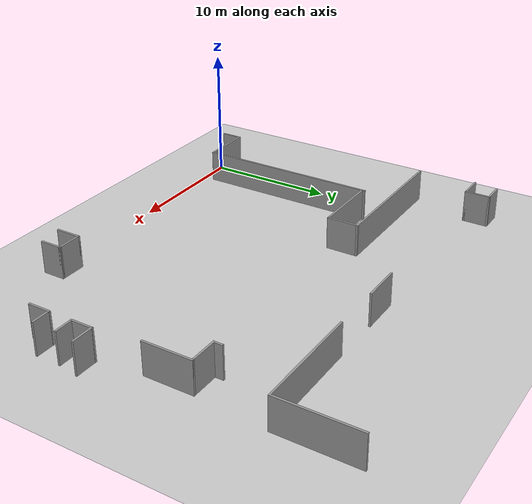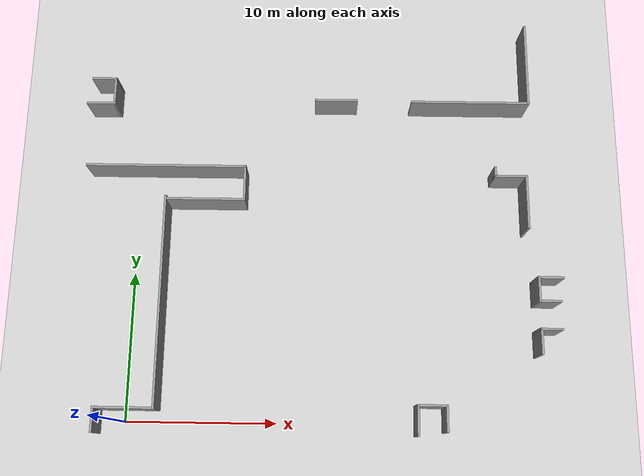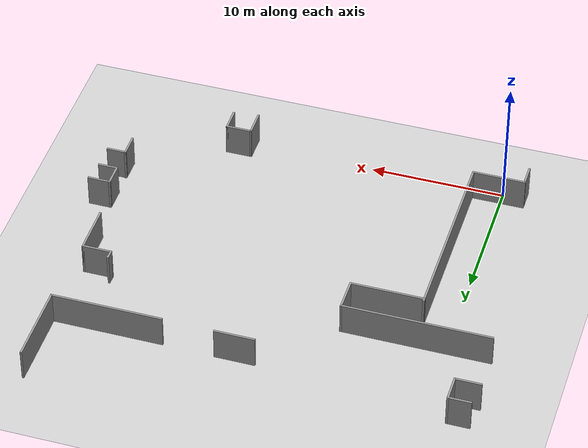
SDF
<sdf version="1.6">
 <world name="default">
  <model name="ground_plane">
   <static>1</static>
   <link name="link">
    <collision name="collision">
     <geometry><plane><normal>0 0 1</normal><size>100 100</size></plane></geometry>
     <surface><friction><ode><mu>100</mu><mu2>50</mu2></ode></friction></surface>
    </collision>
    <visual name="visual">
     <cast_shadows>0</cast_shadows>
     <geometry><plane><normal>0 0 1</normal><size>100 100</size></plane></geometry>
     <material>
      <script><uri>file://media/materials/scripts/gazebo.material</uri><name>Gazebo/Grey</name></script>
     </material>
    </visual>
   </link>
  </model>
  <model name="chengdu_office_0">
   <link name="Wall_10">
    <pose>-23.9919 -17.7709 0 0 -0 1.5708</pose>
    <visual name="Wall_10_Visual">
     <pose>0 0 1.25 0 -0 0</pose>
     <geometry><box><size>2.5 0.15 2.5</size></box></geometry>
     <material>
      <script><uri>file://media/materials/scripts/gazebo.material</uri><name>Gazebo/Grey</name></script>
      <ambient>1 1 1 1</ambient>
      <diffuse>0.7 0.7 0.7 1</diffuse>
      <specular>0.01 0.01 0.01 1</specular>
      <emissive>0 0 0 1</emissive>
     </material>
    </visual>
    <collision name="Wall_10_Collision">
     <pose>0 0 1.25 0 -0 0</pose>
     <geometry><box><size>2.5 0.15 2.5</size></box></geometry>
     <surface>
      <friction>
       <ode><mu>1</mu><mu2>1</mu2><fdir1>0 0 0</fdir1><slip1>0</slip1><slip2>0</slip2></ode>
       <torsional>
        <coefficient>1</coefficient>
        <patch_radius>0</patch_radius>
        <surface_radius>0</surface_radius>
        <use_patch_radius>1</use_patch_radius>
        <ode><slip>0</slip></ode>
       </torsional>
      </friction>
      <bounce><restitution_coefficient>0</restitution_coefficient><threshold>1e+06</threshold></bounce>
      <contact>
       <collide_without_contact>0</collide_without_contact>
       <collide_without_contact_bitmask>1</collide_without_contact_bitmask>
       <collide_bitmask>1</collide_bitmask>
       <ode>
        <soft_cfm>0</soft_cfm>
        <soft_erp>0.2</soft_erp>
        <kp>1e+13</kp>
        <kd>1</kd>
        <max_vel>0.01</max_vel>
        <min_depth>0</min_depth>
       </ode>
       <bullet>
        <split_impulse>1</split_impulse>
        <split_impulse_penetration_threshold>-0.01</split_impulse_penetration_threshold>
        <soft_cfm>0</soft_cfm>
        <soft_erp>0.2</soft_erp>
        <kp>1e+13</kp>
        <kd>1</kd>
       </bullet>
      </contact>
     </surface>
    </collision>
   </link>
   <link name="Wall_11">
    <pose>-29.4169 -16.5959 0 0 -0 3.14159</pose>
    <visual name="Wall_11_Visual">
     <pose>0 0 1.25 0 -0 0</pose>
     <geometry><box><size>11 0.15 2.5</size></box></geometry>
     <material>
      <script><uri>file://media/materials/scripts/gazebo.material</uri><name>Gazebo/Grey</name></script>
      <ambient>1 1 1 1</ambient>
      <diffuse>0.7 0.7 0.7 1</diffuse>
      <specular>0.01 0.01 0.01 1</specular>
      <emissive>0 0 0 1</emissive>
     </material>
    </visual>
    <collision name="Wall_11_Collision">
     <pose>0 0 1.25 0 -0 0</pose>
     <geometry><box><size>11 0.15 2.5</size></box></geometry>
     <surface>
      <friction>
       <ode><mu>1</mu><mu2>1</mu2><fdir1>0 0 0</fdir1><slip1>0</slip1><slip2>0</slip2></ode>
       <torsional>
        <coefficient>1</coefficient>
        <patch_radius>0</patch_radius>
        <surface_radius>0</surface_radius>
        <use_patch_radius>1</use_patch_radius>
        <ode><slip>0</slip></ode>
       </torsional>
      </friction>
      <bounce><restitution_coefficient>0</restitution_coefficient><threshold>1e+06</threshold></bounce>
      <contact>
       <collide_without_contact>0</collide_without_contact>
       <collide_without_contact_bitmask>1</collide_without_contact_bitmask>
       <collide_bitmask>1</collide_bitmask>
       <ode>
        <soft_cfm>0</soft_cfm>
        <soft_erp>0.2</soft_erp>
        <kp>1e+13</kp>
        <kd>1</kd>
        <max_vel>0.01</max_vel>
        <min_depth>0</min_depth>
       </ode>
       <bullet>
        <split_impulse>1</split_impulse>
        <split_impulse_penetration_threshold>-0.01</split_impulse_penetration_threshold>
        <soft_cfm>0</soft_cfm>
        <soft_erp>0.2</soft_erp>
        <kp>1e+13</kp>
        <kd>1</kd>
       </bullet>
      </contact>
     </surface>
    </collision>
   </link>
   <link name="Wall_116">
    <pose>-12.3754 -33.4342 0 0 -0 1.5708</pose>
    <visual name="Wall_116_Visual">
     <pose>0 0 1.25 0 -0 0</pose>
     <geometry><box><size>2 0.15 2.5</size></box></geometry>
     <material>
      <script><uri>file://media/materials/scripts/gazebo.material</uri><name>Gazebo/Grey</name></script>
      <ambient>1 1 1 1</ambient>
      <diffuse>0.7 0.7 0.7 1</diffuse>
      <specular>0.01 0.01 0.01 1</specular>
      <emissive>0 0 0 1</emissive>
     </material>
    </visual>
    <collision name="Wall_116_Collision">
     <pose>0 0 1.25 0 -0 0</pose>
     <geometry><box><size>2 0.15 2.5</size></box></geometry>
     <surface>
      <friction>
       <ode><mu>1</mu><mu2>1</mu2><fdir1>0 0 0</fdir1><slip1>0</slip1><slip2>0</slip2></ode>
       <torsional>
        <coefficient>1</coefficient>
        <patch_radius>0</patch_radius>
        <surface_radius>0</surface_radius>
        <use_patch_radius>1</use_patch_radius>
        <ode><slip>0</slip></ode>
       </torsional>
      </friction>
      <bounce><restitution_coefficient>0</restitution_coefficient><threshold>1e+06</threshold></bounce>
      <contact>
       <collide_without_contact>0</collide_without_contact>
       <collide_without_contact_bitmask>1</collide_without_contact_bitmask>
       <collide_bitmask>1</collide_bitmask>
       <ode>
        <soft_cfm>0</soft_cfm>
        <soft_erp>0.2</soft_erp>
        <kp>1e+13</kp>
        <kd>1</kd>
        <max_vel>0.01</max_vel>
        <min_depth>0</min_depth>
       </ode>
       <bullet>
        <split_impulse>1</split_impulse>
        <split_impulse_penetration_threshold>-0.01</split_impulse_penetration_threshold>
        <soft_cfm>0</soft_cfm>
        <soft_erp>0.2</soft_erp>
        <kp>1e+13</kp>
        <kd>1</kd>
       </bullet>
      </contact>
     </surface>
    </collision>
   </link>
   <link name="Wall_117">
    <pose>-11.4504 -32.5092 0 0 -0 0</pose>
    <visual name="Wall_117_Visual">
     <pose>0 0 1.25 0 -0 0</pose>
     <geometry><box><size>2 0.15 2.5</size></box></geometry>
     <material>
      <script><uri>file://media/materials/scripts/gazebo.material</uri><name>Gazebo/Grey</name></script>
      <ambient>1 1 1 1</ambient>
      <diffuse>0.7 0.7 0.7 1</diffuse>
      <specular>0.01 0.01 0.01 1</specular>
      <emissive>0 0 0 1</emissive>
     </material>
    </visual>
    <collision name="Wall_117_Collision">
     <pose>0 0 1.25 0 -0 0</pose>
     <geometry><box><size>2 0.15 2.5</size></box></geometry>
     <surface>
      <friction>
       <ode><mu>1</mu><mu2>1</mu2><fdir1>0 0 0</fdir1><slip1>0</slip1><slip2>0</slip2></ode>
       <torsional>
        <coefficient>1</coefficient>
        <patch_radius>0</patch_radius>
        <surface_radius>0</surface_radius>
        <use_patch_radius>1</use_patch_radius>
        <ode><slip>0</slip></ode>
       </torsional>
      </friction>
      <bounce><restitution_coefficient>0</restitution_coefficient><threshold>1e+06</threshold></bounce>
      <contact>
       <collide_without_contact>0</collide_without_contact>
       <collide_without_contact_bitmask>1</collide_without_contact_bitmask>
       <collide_bitmask>1</collide_bitmask>
       <ode>
        <soft_cfm>0</soft_cfm>
        <soft_erp>0.2</soft_erp>
        <kp>1e+13</kp>
        <kd>1</kd>
        <max_vel>0.01</max_vel>
        <min_depth>0</min_depth>
       </ode>
       <bullet>
        <split_impulse>1</split_impulse>
        <split_impulse_penetration_threshold>-0.01</split_impulse_penetration_threshold>
        <soft_cfm>0</soft_cfm>
        <soft_erp>0.2</soft_erp>
        <kp>1e+13</kp>
        <kd>1</kd>
       </bullet>
      </contact>
     </surface>
    </collision>
   </link>
   <link name="Wall_118">
    <pose>-10.5254 -33.3092 0 0 0 -1.5708</pose>
    <visual name="Wall_118_Visual">
     <pose>0 0 1.25 0 -0 0</pose>
     <geometry><box><size>1.75 0.15 2.5</size></box></geometry>
     <material>
      <script><uri>file://media/materials/scripts/gazebo.material</uri><name>Gazebo/Grey</name></script>
      <ambient>1 1 1 1</ambient>
      <diffuse>0.7 0.7 0.7 1</diffuse>
      <specular>0.01 0.01 0.01 1</specular>
      <emissive>0 0 0 1</emissive>
     </material>
    </visual>
    <collision name="Wall_118_Collision">
     <pose>0 0 1.25 0 -0 0</pose>
     <geometry><box><size>1.75 0.15 2.5</size></box></geometry>
     <surface>
      <friction>
       <ode><mu>1</mu><mu2>1</mu2><fdir1>0 0 0</fdir1><slip1>0</slip1><slip2>0</slip2></ode>
       <torsional>
        <coefficient>1</coefficient>
        <patch_radius>0</patch_radius>
        <surface_radius>0</surface_radius>
        <use_patch_radius>1</use_patch_radius>
        <ode><slip>0</slip></ode>
       </torsional>
      </friction>
      <bounce><restitution_coefficient>0</restitution_coefficient><threshold>1e+06</threshold></bounce>
      <contact>
       <collide_without_contact>0</collide_without_contact>
       <collide_without_contact_bitmask>1</collide_without_contact_bitmask>
       <collide_bitmask>1</collide_bitmask>
       <ode>
        <soft_cfm>0</soft_cfm>
        <soft_erp>0.2</soft_erp>
        <kp>1e+13</kp>
        <kd>1</kd>
        <max_vel>0.01</max_vel>
        <min_depth>0</min_depth>
       </ode>
       <bullet>
        <split_impulse>1</split_impulse>
        <split_impulse_penetration_threshold>-0.01</split_impulse_penetration_threshold>
        <soft_cfm>0</soft_cfm>
        <soft_erp>0.2</soft_erp>
        <kp>1e+13</kp>
        <kd>1</kd>
       </bullet>
      </contact>
     </surface>
    </collision>
   </link>
   <link name="Wall_13">
    <pose>-34.2261 -12.0538 0 0 -0 0</pose>
    <visual name="Wall_13_Visual">
     <pose>0 0 1.25 0 -0 0</pose>
     <geometry><box><size>2 0.15 2.5</size></box></geometry>
     <material>
      <script><uri>file://media/materials/scripts/gazebo.material</uri><name>Gazebo/Grey</name></script>
      <ambient>1 1 1 1</ambient>
      <diffuse>0.7 0.7 0.7 1</diffuse>
      <specular>0.01 0.01 0.01 1</specular>
      <emissive>0 0 0 1</emissive>
     </material>
    </visual>
    <collision name="Wall_13_Collision">
     <pose>0 0 1.25 0 -0 0</pose>
     <geometry><box><size>2 0.15 2.5</size></box></geometry>
     <surface>
      <friction>
       <ode><mu>1</mu><mu2>1</mu2><fdir1>0 0 0</fdir1><slip1>0</slip1><slip2>0</slip2></ode>
       <torsional>
        <coefficient>1</coefficient>
        <patch_radius>0</patch_radius>
        <surface_radius>0</surface_radius>
        <use_patch_radius>1</use_patch_radius>
        <ode><slip>0</slip></ode>
       </torsional>
      </friction>
      <bounce><restitution_coefficient>0</restitution_coefficient><threshold>1e+06</threshold></bounce>
      <contact>
       <collide_without_contact>0</collide_without_contact>
       <collide_without_contact_bitmask>1</collide_without_contact_bitmask>
       <collide_bitmask>1</collide_bitmask>
       <ode>
        <soft_cfm>0</soft_cfm>
        <soft_erp>0.2</soft_erp>
        <kp>1e+13</kp>
        <kd>1</kd>
        <max_vel>0.01</max_vel>
        <min_depth>0</min_depth>
       </ode>
       <bullet>
        <split_impulse>1</split_impulse>
        <split_impulse_penetration_threshold>-0.01</split_impulse_penetration_threshold>
        <soft_cfm>0</soft_cfm>
        <soft_erp>0.2</soft_erp>
        <kp>1e+13</kp>
        <kd>1</kd>
       </bullet>
      </contact>
     </surface>
    </collision>
   </link>
   <link name="Wall_131">
    <pose>-6.84716 -16.765 0 0 0 -1.5708</pose>
    <visual name="Wall_131_Visual">
     <pose>0 0 1.25 0 -0 0</pose>
     <geometry><box><size>0.75 0.15 2.5</size></box></geometry>
     <material>
      <script><uri>file://media/materials/scripts/gazebo.material</uri><name>Gazebo/Grey</name></script>
      <ambient>1 1 1 1</ambient>
      <diffuse>0.7 0.7 0.7 1</diffuse>
      <specular>0.01 0.01 0.01 1</specular>
      <emissive>0 0 0 1</emissive>
     </material>
    </visual>
    <collision name="Wall_131_Collision">
     <pose>0 0 1.25 0 -0 0</pose>
     <geometry><box><size>0.75 0.15 2.5</size></box></geometry>
     <surface>
      <friction>
       <ode><mu>1</mu><mu2>1</mu2><fdir1>0 0 0</fdir1><slip1>0</slip1><slip2>0</slip2></ode>
       <torsional>
        <coefficient>1</coefficient>
        <patch_radius>0</patch_radius>
        <surface_radius>0</surface_radius>
        <use_patch_radius>1</use_patch_radius>
        <ode><slip>0</slip></ode>
       </torsional>
      </friction>
      <bounce><restitution_coefficient>0</restitution_coefficient><threshold>1e+06</threshold></bounce>
      <contact>
       <collide_without_contact>0</collide_without_contact>
       <collide_without_contact_bitmask>1</collide_without_contact_bitmask>
       <collide_bitmask>1</collide_bitmask>
       <ode>
        <soft_cfm>0</soft_cfm>
        <soft_erp>0.2</soft_erp>
        <kp>1e+13</kp>
        <kd>1</kd>
        <max_vel>0.01</max_vel>
        <min_depth>0</min_depth>
       </ode>
       <bullet>
        <split_impulse>1</split_impulse>
        <split_impulse_penetration_threshold>-0.01</split_impulse_penetration_threshold>
        <soft_cfm>0</soft_cfm>
        <soft_erp>0.2</soft_erp>
        <kp>1e+13</kp>
        <kd>1</kd>
       </bullet>
      </contact>
     </surface>
    </collision>
   </link>
   <link name="Wall_132">
    <pose>-5.79716 -17.065 0 0 -0 0</pose>
    <visual name="Wall_132_Visual">
     <pose>0 0 1.25 0 -0 0</pose>
     <geometry><box><size>2.25 0.15 2.5</size></box></geometry>
     <material>
      <script><uri>file://media/materials/scripts/gazebo.material</uri><name>Gazebo/Grey</name></script>
      <ambient>1 1 1 1</ambient>
      <diffuse>0.7 0.7 0.7 1</diffuse>
      <specular>0.01 0.01 0.01 1</specular>
      <emissive>0 0 0 1</emissive>
     </material>
    </visual>
    <collision name="Wall_132_Collision">
     <pose>0 0 1.25 0 -0 0</pose>
     <geometry><box><size>2.25 0.15 2.5</size></box></geometry>
     <surface>
      <friction>
       <ode><mu>1</mu><mu2>1</mu2><fdir1>0 0 0</fdir1><slip1>0</slip1><slip2>0</slip2></ode>
       <torsional>
        <coefficient>1</coefficient>
        <patch_radius>0</patch_radius>
        <surface_radius>0</surface_radius>
        <use_patch_radius>1</use_patch_radius>
        <ode><slip>0</slip></ode>
       </torsional>
      </friction>
      <bounce><restitution_coefficient>0</restitution_coefficient><threshold>1e+06</threshold></bounce>
      <contact>
       <collide_without_contact>0</collide_without_contact>
       <collide_without_contact_bitmask>1</collide_without_contact_bitmask>
       <collide_bitmask>1</collide_bitmask>
       <ode>
        <soft_cfm>0</soft_cfm>
        <soft_erp>0.2</soft_erp>
        <kp>1e+13</kp>
        <kd>1</kd>
        <max_vel>0.01</max_vel>
        <min_depth>0</min_depth>
       </ode>
       <bullet>
        <split_impulse>1</split_impulse>
        <split_impulse_penetration_threshold>-0.01</split_impulse_penetration_threshold>
        <soft_cfm>0</soft_cfm>
        <soft_erp>0.2</soft_erp>
        <kp>1e+13</kp>
        <kd>1</kd>
       </bullet>
      </contact>
     </surface>
    </collision>
   </link>
   <link name="Wall_133">
    <pose>-4.74716 -18.865 0 0 0 -1.5708</pose>
    <visual name="Wall_133_Visual">
     <pose>0 0 1.25 0 -0 0</pose>
     <geometry><box><size>3.75 0.15 2.5</size></box></geometry>
     <material>
      <script><uri>file://media/materials/scripts/gazebo.material</uri><name>Gazebo/Grey</name></script>
      <ambient>1 1 1 1</ambient>
      <diffuse>0.7 0.7 0.7 1</diffuse>
      <specular>0.01 0.01 0.01 1</specular>
      <emissive>0 0 0 1</emissive>
     </material>
    </visual>
    <collision name="Wall_133_Collision">
     <pose>0 0 1.25 0 -0 0</pose>
     <geometry><box><size>3.75 0.15 2.5</size></box></geometry>
     <surface>
      <friction>
       <ode><mu>1</mu><mu2>1</mu2><fdir1>0 0 0</fdir1><slip1>0</slip1><slip2>0</slip2></ode>
       <torsional>
        <coefficient>1</coefficient>
        <patch_radius>0</patch_radius>
        <surface_radius>0</surface_radius>
        <use_patch_radius>1</use_patch_radius>
        <ode><slip>0</slip></ode>
       </torsional>
      </friction>
      <bounce><restitution_coefficient>0</restitution_coefficient><threshold>1e+06</threshold></bounce>
      <contact>
       <collide_without_contact>0</collide_without_contact>
       <collide_without_contact_bitmask>1</collide_without_contact_bitmask>
       <collide_bitmask>1</collide_bitmask>
       <ode>
        <soft_cfm>0</soft_cfm>
        <soft_erp>0.2</soft_erp>
        <kp>1e+13</kp>
        <kd>1</kd>
        <max_vel>0.01</max_vel>
        <min_depth>0</min_depth>
       </ode>
       <bullet>
        <split_impulse>1</split_impulse>
        <split_impulse_penetration_threshold>-0.01</split_impulse_penetration_threshold>
        <soft_cfm>0</soft_cfm>
        <soft_erp>0.2</soft_erp>
        <kp>1e+13</kp>
        <kd>1</kd>
       </bullet>
      </contact>
     </surface>
    </collision>
   </link>
   <link name="Wall_14">
    <pose>-33.3011 -11.1288 0 0 -0 1.5708</pose>
    <visual name="Wall_14_Visual">
     <pose>0 0 1.25 0 -0 0</pose>
     <geometry><box><size>2 0.15 2.5</size></box></geometry>
     <material>
      <script><uri>file://media/materials/scripts/gazebo.material</uri><name>Gazebo/Grey</name></script>
      <ambient>1 1 1 1</ambient>
      <diffuse>0.7 0.7 0.7 1</diffuse>
      <specular>0.01 0.01 0.01 1</specular>
      <emissive>0 0 0 1</emissive>
     </material>
    </visual>
    <collision name="Wall_14_Collision">
     <pose>0 0 1.25 0 -0 0</pose>
     <geometry><box><size>2 0.15 2.5</size></box></geometry>
     <surface>
      <friction>
       <ode><mu>1</mu><mu2>1</mu2><fdir1>0 0 0</fdir1><slip1>0</slip1><slip2>0</slip2></ode>
       <torsional>
        <coefficient>1</coefficient>
        <patch_radius>0</patch_radius>
        <surface_radius>0</surface_radius>
        <use_patch_radius>1</use_patch_radius>
        <ode><slip>0</slip></ode>
       </torsional>
      </friction>
      <bounce><restitution_coefficient>0</restitution_coefficient><threshold>1e+06</threshold></bounce>
      <contact>
       <collide_without_contact>0</collide_without_contact>
       <collide_without_contact_bitmask>1</collide_without_contact_bitmask>
       <collide_bitmask>1</collide_bitmask>
       <ode>
        <soft_cfm>0</soft_cfm>
        <soft_erp>0.2</soft_erp>
        <kp>1e+13</kp>
        <kd>1</kd>
        <max_vel>0.01</max_vel>
        <min_depth>0</min_depth>
       </ode>
       <bullet>
        <split_impulse>1</split_impulse>
        <split_impulse_penetration_threshold>-0.01</split_impulse_penetration_threshold>
        <soft_cfm>0</soft_cfm>
        <soft_erp>0.2</soft_erp>
        <kp>1e+13</kp>
        <kd>1</kd>
       </bullet>
      </contact>
     </surface>
    </collision>
   </link>
   <link name="Wall_148">
    <pose>-3.43965 -24.0798 0 0 -0 3.14159</pose>
    <visual name="Wall_148_Visual">
     <pose>0 0 1.25 0 -0 0</pose>
     <geometry><box><size>1.75 0.15 2.5</size></box></geometry>
     <material>
      <script><uri>file://media/materials/scripts/gazebo.material</uri><name>Gazebo/Grey</name></script>
      <ambient>1 1 1 1</ambient>
      <diffuse>0.7 0.7 0.7 1</diffuse>
      <specular>0.01 0.01 0.01 1</specular>
      <emissive>0 0 0 1</emissive>
     </material>
    </visual>
    <collision name="Wall_148_Collision">
     <pose>0 0 1.25 0 -0 0</pose>
     <geometry><box><size>1.75 0.15 2.5</size></box></geometry>
     <surface>
      <friction>
       <ode><mu>1</mu><mu2>1</mu2><fdir1>0 0 0</fdir1><slip1>0</slip1><slip2>0</slip2></ode>
       <torsional>
        <coefficient>1</coefficient>
        <patch_radius>0</patch_radius>
        <surface_radius>0</surface_radius>
        <use_patch_radius>1</use_patch_radius>
        <ode><slip>0</slip></ode>
       </torsional>
      </friction>
      <bounce><restitution_coefficient>0</restitution_coefficient><threshold>1e+06</threshold></bounce>
      <contact>
       <collide_without_contact>0</collide_without_contact>
       <collide_without_contact_bitmask>1</collide_without_contact_bitmask>
       <collide_bitmask>1</collide_bitmask>
       <ode>
        <soft_cfm>0</soft_cfm>
        <soft_erp>0.2</soft_erp>
        <kp>1e+13</kp>
        <kd>1</kd>
        <max_vel>0.01</max_vel>
        <min_depth>0</min_depth>
       </ode>
       <bullet>
        <split_impulse>1</split_impulse>
        <split_impulse_penetration_threshold>-0.01</split_impulse_penetration_threshold>
        <soft_cfm>0</soft_cfm>
        <soft_erp>0.2</soft_erp>
        <kp>1e+13</kp>
        <kd>1</kd>
       </bullet>
      </contact>
     </surface>
    </collision>
   </link>
   <link name="Wall_149">
    <pose>-4.23965 -24.8644 0 0 0 -1.5708</pose>
    <visual name="Wall_149_Visual">
     <pose>0 0 1.25 0 -0 0</pose>
     <geometry><box><size>1.75 0.15 2.5</size></box></geometry>
     <material>
      <script><uri>file://media/materials/scripts/gazebo.material</uri><name>Gazebo/Grey</name></script>
      <ambient>1 1 1 1</ambient>
      <diffuse>0.7 0.7 0.7 1</diffuse>
      <specular>0.01 0.01 0.01 1</specular>
      <emissive>0 0 0 1</emissive>
     </material>
    </visual>
    <collision name="Wall_149_Collision">
     <pose>0 0 1.25 0 -0 0</pose>
     <geometry><box><size>1.75 0.15 2.5</size></box></geometry>
     <surface>
      <friction>
       <ode><mu>1</mu><mu2>1</mu2><fdir1>0 0 0</fdir1><slip1>0</slip1><slip2>0</slip2></ode>
       <torsional>
        <coefficient>1</coefficient>
        <patch_radius>0</patch_radius>
        <surface_radius>0</surface_radius>
        <use_patch_radius>1</use_patch_radius>
        <ode><slip>0</slip></ode>
       </torsional>
      </friction>
      <bounce><restitution_coefficient>0</restitution_coefficient><threshold>1e+06</threshold></bounce>
      <contact>
       <collide_without_contact>0</collide_without_contact>
       <collide_without_contact_bitmask>1</collide_without_contact_bitmask>
       <collide_bitmask>1</collide_bitmask>
       <ode>
        <soft_cfm>0</soft_cfm>
        <soft_erp>0.2</soft_erp>
        <kp>1e+13</kp>
        <kd>1</kd>
        <max_vel>0.01</max_vel>
        <min_depth>0</min_depth>
       </ode>
       <bullet>
        <split_impulse>1</split_impulse>
        <split_impulse_penetration_threshold>-0.01</split_impulse_penetration_threshold>
        <soft_cfm>0</soft_cfm>
        <soft_erp>0.2</soft_erp>
        <kp>1e+13</kp>
        <kd>1</kd>
       </bullet>
      </contact>
     </surface>
    </collision>
   </link>
   <link name="Wall_15">
    <pose>-34.1011 -10.2038 0 0 -0 3.14159</pose>
    <visual name="Wall_15_Visual">
     <pose>0 0 1.25 0 -0 0</pose>
     <geometry><box><size>1.75 0.15 2.5</size></box></geometry>
     <material>
      <script><uri>file://media/materials/scripts/gazebo.material</uri><name>Gazebo/Grey</name></script>
      <ambient>1 1 1 1</ambient>
      <diffuse>0.7 0.7 0.7 1</diffuse>
      <specular>0.01 0.01 0.01 1</specular>
      <emissive>0 0 0 1</emissive>
     </material>
    </visual>
    <collision name="Wall_15_Collision">
     <pose>0 0 1.25 0 -0 0</pose>
     <geometry><box><size>1.75 0.15 2.5</size></box></geometry>
     <surface>
      <friction>
       <ode><mu>1</mu><mu2>1</mu2><fdir1>0 0 0</fdir1><slip1>0</slip1><slip2>0</slip2></ode>
       <torsional>
        <coefficient>1</coefficient>
        <patch_radius>0</patch_radius>
        <surface_radius>0</surface_radius>
        <use_patch_radius>1</use_patch_radius>
        <ode><slip>0</slip></ode>
       </torsional>
      </friction>
      <bounce><restitution_coefficient>0</restitution_coefficient><threshold>1e+06</threshold></bounce>
      <contact>
       <collide_without_contact>0</collide_without_contact>
       <collide_without_contact_bitmask>1</collide_without_contact_bitmask>
       <collide_bitmask>1</collide_bitmask>
       <ode>
        <soft_cfm>0</soft_cfm>
        <soft_erp>0.2</soft_erp>
        <kp>1e+13</kp>
        <kd>1</kd>
        <max_vel>0.01</max_vel>
        <min_depth>0</min_depth>
       </ode>
       <bullet>
        <split_impulse>1</split_impulse>
        <split_impulse_penetration_threshold>-0.01</split_impulse_penetration_threshold>
        <soft_cfm>0</soft_cfm>
        <soft_erp>0.2</soft_erp>
        <kp>1e+13</kp>
        <kd>1</kd>
       </bullet>
      </contact>
     </surface>
    </collision>
   </link>
   <link name="Wall_150">
    <pose>-3.56465 -25.6618 0 0 -0 0</pose>
    <visual name="Wall_150_Visual">
     <pose>0 0 1.25 0 -0 0</pose>
     <geometry><box><size>1.5 0.15 2.5</size></box></geometry>
     <material>
      <script><uri>file://media/materials/scripts/gazebo.material</uri><name>Gazebo/Grey</name></script>
      <ambient>1 1 1 1</ambient>
      <diffuse>0.7 0.7 0.7 1</diffuse>
      <specular>0.01 0.01 0.01 1</specular>
      <emissive>0 0 0 1</emissive>
     </material>
    </visual>
    <collision name="Wall_150_Collision">
     <pose>0 0 1.25 0 -0 0</pose>
     <geometry><box><size>1.5 0.15 2.5</size></box></geometry>
     <surface>
      <friction>
       <ode><mu>1</mu><mu2>1</mu2><fdir1>0 0 0</fdir1><slip1>0</slip1><slip2>0</slip2></ode>
       <torsional>
        <coefficient>1</coefficient>
        <patch_radius>0</patch_radius>
        <surface_radius>0</surface_radius>
        <use_patch_radius>1</use_patch_radius>
        <ode><slip>0</slip></ode>
       </torsional>
      </friction>
      <bounce><restitution_coefficient>0</restitution_coefficient><threshold>1e+06</threshold></bounce>
      <contact>
       <collide_without_contact>0</collide_without_contact>
       <collide_without_contact_bitmask>1</collide_without_contact_bitmask>
       <collide_bitmask>1</collide_bitmask>
       <ode>
        <soft_cfm>0</soft_cfm>
        <soft_erp>0.2</soft_erp>
        <kp>1e+13</kp>
        <kd>1</kd>
        <max_vel>0.01</max_vel>
        <min_depth>0</min_depth>
       </ode>
       <bullet>
        <split_impulse>1</split_impulse>
        <split_impulse_penetration_threshold>-0.01</split_impulse_penetration_threshold>
        <soft_cfm>0</soft_cfm>
        <soft_erp>0.2</soft_erp>
        <kp>1e+13</kp>
        <kd>1</kd>
       </bullet>
      </contact>
     </surface>
    </collision>
   </link>
   <link name="Wall_152">
    <pose>-3.56465 -27.5163 0 0 -0 3.14159</pose>
    <visual name="Wall_152_Visual">
     <pose>0 0 1.25 0 -0 0</pose>
     <geometry><box><size>1.5 0.15 2.5</size></box></geometry>
     <material>
      <script><uri>file://media/materials/scripts/gazebo.material</uri><name>Gazebo/Grey</name></script>
      <ambient>1 1 1 1</ambient>
      <diffuse>0.7 0.7 0.7 1</diffuse>
      <specular>0.01 0.01 0.01 1</specular>
      <emissive>0 0 0 1</emissive>
     </material>
    </visual>
    <collision name="Wall_152_Collision">
     <pose>0 0 1.25 0 -0 0</pose>
     <geometry><box><size>1.5 0.15 2.5</size></box></geometry>
     <surface>
      <friction>
       <ode><mu>1</mu><mu2>1</mu2><fdir1>0 0 0</fdir1><slip1>0</slip1><slip2>0</slip2></ode>
       <torsional>
        <coefficient>1</coefficient>
        <patch_radius>0</patch_radius>
        <surface_radius>0</surface_radius>
        <use_patch_radius>1</use_patch_radius>
        <ode><slip>0</slip></ode>
       </torsional>
      </friction>
      <bounce><restitution_coefficient>0</restitution_coefficient><threshold>1e+06</threshold></bounce>
      <contact>
       <collide_without_contact>0</collide_without_contact>
       <collide_without_contact_bitmask>1</collide_without_contact_bitmask>
       <collide_bitmask>1</collide_bitmask>
       <ode>
        <soft_cfm>0</soft_cfm>
        <soft_erp>0.2</soft_erp>
        <kp>1e+13</kp>
        <kd>1</kd>
        <max_vel>0.01</max_vel>
        <min_depth>0</min_depth>
       </ode>
       <bullet>
        <split_impulse>1</split_impulse>
        <split_impulse_penetration_threshold>-0.01</split_impulse_penetration_threshold>
        <soft_cfm>0</soft_cfm>
        <soft_erp>0.2</soft_erp>
        <kp>1e+13</kp>
        <kd>1</kd>
       </bullet>
      </contact>
     </surface>
    </collision>
   </link>
   <link name="Wall_154">
    <pose>-4.23965 -28.2949 0 0 0 -1.5708</pose>
    <visual name="Wall_154_Visual">
     <pose>0 0 1.25 0 -0 0</pose>
     <geometry><box><size>1.75 0.15 2.5</size></box></geometry>
     <material>
      <script><uri>file://media/materials/scripts/gazebo.material</uri><name>Gazebo/Grey</name></script>
      <ambient>1 1 1 1</ambient>
      <diffuse>0.7 0.7 0.7 1</diffuse>
      <specular>0.01 0.01 0.01 1</specular>
      <emissive>0 0 0 1</emissive>
     </material>
    </visual>
    <collision name="Wall_154_Collision">
     <pose>0 0 1.25 0 -0 0</pose>
     <geometry><box><size>1.75 0.15 2.5</size></box></geometry>
     <surface>
      <friction>
       <ode><mu>1</mu><mu2>1</mu2><fdir1>0 0 0</fdir1><slip1>0</slip1><slip2>0</slip2></ode>
       <torsional>
        <coefficient>1</coefficient>
        <patch_radius>0</patch_radius>
        <surface_radius>0</surface_radius>
        <use_patch_radius>1</use_patch_radius>
        <ode><slip>0</slip></ode>
       </torsional>
      </friction>
      <bounce><restitution_coefficient>0</restitution_coefficient><threshold>1e+06</threshold></bounce>
      <contact>
       <collide_without_contact>0</collide_without_contact>
       <collide_without_contact_bitmask>1</collide_without_contact_bitmask>
       <collide_bitmask>1</collide_bitmask>
       <ode>
        <soft_cfm>0</soft_cfm>
        <soft_erp>0.2</soft_erp>
        <kp>1e+13</kp>
        <kd>1</kd>
        <max_vel>0.01</max_vel>
        <min_depth>0</min_depth>
       </ode>
       <bullet>
        <split_impulse>1</split_impulse>
        <split_impulse_penetration_threshold>-0.01</split_impulse_penetration_threshold>
        <soft_cfm>0</soft_cfm>
        <soft_erp>0.2</soft_erp>
        <kp>1e+13</kp>
        <kd>1</kd>
       </bullet>
      </contact>
     </surface>
    </collision>
   </link>
   <link name="Wall_5">
    <pose>-33.1919 -33.7209 0 0 -0 1.5708</pose>
    <visual name="Wall_5_Visual">
     <pose>0 0 1.25 0 -0 0</pose>
     <geometry><box><size>1.5 0.15 2.5</size></box></geometry>
     <material>
      <script><uri>file://media/materials/scripts/gazebo.material</uri><name>Gazebo/Grey</name></script>
      <ambient>1 1 1 1</ambient>
      <diffuse>0.7 0.7 0.7 1</diffuse>
      <specular>0.01 0.01 0.01 1</specular>
      <emissive>0 0 0 1</emissive>
     </material>
    </visual>
    <collision name="Wall_5_Collision">
     <pose>0 0 1.25 0 -0 0</pose>
     <geometry><box><size>1.5 0.15 2.5</size></box></geometry>
     <surface>
      <friction>
       <ode><mu>1</mu><mu2>1</mu2><fdir1>0 0 0</fdir1><slip1>0</slip1><slip2>0</slip2></ode>
       <torsional>
        <coefficient>1</coefficient>
        <patch_radius>0</patch_radius>
        <surface_radius>0</surface_radius>
        <use_patch_radius>1</use_patch_radius>
        <ode><slip>0</slip></ode>
       </torsional>
      </friction>
      <bounce><restitution_coefficient>0</restitution_coefficient><threshold>1e+06</threshold></bounce>
      <contact>
       <collide_without_contact>0</collide_without_contact>
       <collide_without_contact_bitmask>1</collide_without_contact_bitmask>
       <collide_bitmask>1</collide_bitmask>
       <ode>
        <soft_cfm>0</soft_cfm>
        <soft_erp>0.2</soft_erp>
        <kp>1e+13</kp>
        <kd>1</kd>
        <max_vel>0.01</max_vel>
        <min_depth>0</min_depth>
       </ode>
       <bullet>
        <split_impulse>1</split_impulse>
        <split_impulse_penetration_threshold>-0.01</split_impulse_penetration_threshold>
        <soft_cfm>0</soft_cfm>
        <soft_erp>0.2</soft_erp>
        <kp>1e+13</kp>
        <kd>1</kd>
       </bullet>
      </contact>
     </surface>
    </collision>
   </link>
   <link name="Wall_58">
    <pose>-17.7903 -11.6414 0 0 -0 0</pose>
    <visual name="Wall_58_Visual">
     <pose>0 0 1.25 0 -0 0</pose>
     <geometry><box><size>3 0.15 2.5</size></box></geometry>
     <material>
      <script><uri>file://media/materials/scripts/gazebo.material</uri><name>Gazebo/Grey</name></script>
      <ambient>1 1 1 1</ambient>
      <diffuse>0.7 0.7 0.7 1</diffuse>
      <specular>0.01 0.01 0.01 1</specular>
      <emissive>0 0 0 1</emissive>
     </material>
    </visual>
    <collision name="Wall_58_Collision">
     <pose>0 0 1.25 0 -0 0</pose>
     <geometry><box><size>3 0.15 2.5</size></box></geometry>
     <surface>
      <friction>
       <ode><mu>1</mu><mu2>1</mu2><fdir1>0 0 0</fdir1><slip1>0</slip1><slip2>0</slip2></ode>
       <torsional>
        <coefficient>1</coefficient>
        <patch_radius>0</patch_radius>
        <surface_radius>0</surface_radius>
        <use_patch_radius>1</use_patch_radius>
        <ode><slip>0</slip></ode>
       </torsional>
      </friction>
      <bounce><restitution_coefficient>0</restitution_coefficient><threshold>1e+06</threshold></bounce>
      <contact>
       <collide_without_contact>0</collide_without_contact>
       <collide_without_contact_bitmask>1</collide_without_contact_bitmask>
       <collide_bitmask>1</collide_bitmask>
       <ode>
        <soft_cfm>0</soft_cfm>
        <soft_erp>0.2</soft_erp>
        <kp>1e+13</kp>
        <kd>1</kd>
        <max_vel>0.01</max_vel>
        <min_depth>0</min_depth>
       </ode>
       <bullet>
        <split_impulse>1</split_impulse>
        <split_impulse_penetration_threshold>-0.01</split_impulse_penetration_threshold>
        <soft_cfm>0</soft_cfm>
        <soft_erp>0.2</soft_erp>
        <kp>1e+13</kp>
        <kd>1</kd>
       </bullet>
      </contact>
     </surface>
    </collision>
   </link>
   <link name="Wall_6">
    <pose>-31.2669 -32.8883 0 0 -0 0</pose>
    <visual name="Wall_6_Visual">
     <pose>0 0 1.25 0 -0 0</pose>
     <geometry><box><size>4 0.15 2.5</size></box></geometry>
     <material>
      <script><uri>file://media/materials/scripts/gazebo.material</uri><name>Gazebo/Grey</name></script>
      <ambient>1 1 1 1</ambient>
      <diffuse>0.7 0.7 0.7 1</diffuse>
      <specular>0.01 0.01 0.01 1</specular>
      <emissive>0 0 0 1</emissive>
     </material>
    </visual>
    <collision name="Wall_6_Collision">
     <pose>0 0 1.25 0 -0 0</pose>
     <geometry><box><size>4 0.15 2.5</size></box></geometry>
     <surface>
      <friction>
       <ode><mu>1</mu><mu2>1</mu2><fdir1>0 0 0</fdir1><slip1>0</slip1><slip2>0</slip2></ode>
       <torsional>
        <coefficient>1</coefficient>
        <patch_radius>0</patch_radius>
        <surface_radius>0</surface_radius>
        <use_patch_radius>1</use_patch_radius>
        <ode><slip>0</slip></ode>
       </torsional>
      </friction>
      <bounce><restitution_coefficient>0</restitution_coefficient><threshold>1e+06</threshold></bounce>
      <contact>
       <collide_without_contact>0</collide_without_contact>
       <collide_without_contact_bitmask>1</collide_without_contact_bitmask>
       <collide_bitmask>1</collide_bitmask>
       <ode>
        <soft_cfm>0</soft_cfm>
        <soft_erp>0.2</soft_erp>
        <kp>1e+13</kp>
        <kd>1</kd>
        <max_vel>0.01</max_vel>
        <min_depth>0</min_depth>
       </ode>
       <bullet>
        <split_impulse>1</split_impulse>
        <split_impulse_penetration_threshold>-0.01</split_impulse_penetration_threshold>
        <soft_cfm>0</soft_cfm>
        <soft_erp>0.2</soft_erp>
        <kp>1e+13</kp>
        <kd>1</kd>
       </bullet>
      </contact>
     </surface>
    </collision>
   </link>
   <link name="Wall_64">
    <pose>-8.42253 -11.6923 0 0 -0 0</pose>
    <visual name="Wall_64_Visual">
     <pose>0 0 1.25 0 -0 0</pose>
     <geometry><box><size>8.25 0.15 2.5</size></box></geometry>
     <material>
      <script><uri>file://media/materials/scripts/gazebo.material</uri><name>Gazebo/Grey</name></script>
      <ambient>1 1 1 1</ambient>
      <diffuse>0.7 0.7 0.7 1</diffuse>
      <specular>0.01 0.01 0.01 1</specular>
      <emissive>0 0 0 1</emissive>
     </material>
    </visual>
    <collision name="Wall_64_Collision">
     <pose>0 0 1.25 0 -0 0</pose>
     <geometry><box><size>8.25 0.15 2.5</size></box></geometry>
     <surface>
      <friction>
       <ode><mu>1</mu><mu2>1</mu2><fdir1>0 0 0</fdir1><slip1>0</slip1><slip2>0</slip2></ode>
       <torsional>
        <coefficient>1</coefficient>
        <patch_radius>0</patch_radius>
        <surface_radius>0</surface_radius>
        <use_patch_radius>1</use_patch_radius>
        <ode><slip>0</slip></ode>
       </torsional>
      </friction>
      <bounce><restitution_coefficient>0</restitution_coefficient><threshold>1e+06</threshold></bounce>
      <contact>
       <collide_without_contact>0</collide_without_contact>
       <collide_without_contact_bitmask>1</collide_without_contact_bitmask>
       <collide_bitmask>1</collide_bitmask>
       <ode>
        <soft_cfm>0</soft_cfm>
        <soft_erp>0.2</soft_erp>
        <kp>1e+13</kp>
        <kd>1</kd>
        <max_vel>0.01</max_vel>
        <min_depth>0</min_depth>
       </ode>
       <bullet>
        <split_impulse>1</split_impulse>
        <split_impulse_penetration_threshold>-0.01</split_impulse_penetration_threshold>
        <soft_cfm>0</soft_cfm>
        <soft_erp>0.2</soft_erp>
        <kp>1e+13</kp>
        <kd>1</kd>
       </bullet>
      </contact>
     </surface>
    </collision>
   </link>
   <link name="Wall_65">
    <pose>-4.37253 -8.7673 0 0 -0 1.5708</pose>
    <visual name="Wall_65_Visual">
     <pose>0 0 1.25 0 -0 0</pose>
     <geometry><box><size>6 0.15 2.5</size></box></geometry>
     <material>
      <script><uri>file://media/materials/scripts/gazebo.material</uri><name>Gazebo/Grey</name></script>
      <ambient>1 1 1 1</ambient>
      <diffuse>0.7 0.7 0.7 1</diffuse>
      <specular>0.01 0.01 0.01 1</specular>
      <emissive>0 0 0 1</emissive>
     </material>
    </visual>
    <collision name="Wall_65_Collision">
     <pose>0 0 1.25 0 -0 0</pose>
     <geometry><box><size>6 0.15 2.5</size></box></geometry>
     <surface>
      <friction>
       <ode><mu>1</mu><mu2>1</mu2><fdir1>0 0 0</fdir1><slip1>0</slip1><slip2>0</slip2></ode>
       <torsional>
        <coefficient>1</coefficient>
        <patch_radius>0</patch_radius>
        <surface_radius>0</surface_radius>
        <use_patch_radius>1</use_patch_radius>
        <ode><slip>0</slip></ode>
       </torsional>
      </friction>
      <bounce><restitution_coefficient>0</restitution_coefficient><threshold>1e+06</threshold></bounce>
      <contact>
       <collide_without_contact>0</collide_without_contact>
       <collide_without_contact_bitmask>1</collide_without_contact_bitmask>
       <collide_bitmask>1</collide_bitmask>
       <ode>
        <soft_cfm>0</soft_cfm>
        <soft_erp>0.2</soft_erp>
        <kp>1e+13</kp>
        <kd>1</kd>
        <max_vel>0.01</max_vel>
        <min_depth>0</min_depth>
       </ode>
       <bullet>
        <split_impulse>1</split_impulse>
        <split_impulse_penetration_threshold>-0.01</split_impulse_penetration_threshold>
        <soft_cfm>0</soft_cfm>
        <soft_erp>0.2</soft_erp>
        <kp>1e+13</kp>
        <kd>1</kd>
       </bullet>
      </contact>
     </surface>
    </collision>
   </link>
   <link name="Wall_7">
    <pose>-29.3405 -25.8338 0 0 -0 1.5708</pose>
    <visual name="Wall_7_Visual">
     <pose>0 0 1.25 0 -0 0</pose>
     <geometry><box><size>14.25 0.15 2.5</size></box></geometry>
     <material>
      <script><uri>file://media/materials/scripts/gazebo.material</uri><name>Gazebo/Grey</name></script>
      <ambient>1 1 1 1</ambient>
      <diffuse>0.7 0.7 0.7 1</diffuse>
      <specular>0.01 0.01 0.01 1</specular>
      <emissive>0 0 0 1</emissive>
     </material>
    </visual>
    <collision name="Wall_7_Collision">
     <pose>0 0 1.25 0 -0 0</pose>
     <geometry><box><size>14.25 0.15 2.5</size></box></geometry>
     <surface>
      <friction>
       <ode><mu>1</mu><mu2>1</mu2><fdir1>0 0 0</fdir1><slip1>0</slip1><slip2>0</slip2></ode>
       <torsional>
        <coefficient>1</coefficient>
        <patch_radius>0</patch_radius>
        <surface_radius>0</surface_radius>
        <use_patch_radius>1</use_patch_radius>
        <ode><slip>0</slip></ode>
       </torsional>
      </friction>
      <bounce><restitution_coefficient>0</restitution_coefficient><threshold>1e+06</threshold></bounce>
      <contact>
       <collide_without_contact>0</collide_without_contact>
       <collide_without_contact_bitmask>1</collide_without_contact_bitmask>
       <collide_bitmask>1</collide_bitmask>
       <ode>
        <soft_cfm>0</soft_cfm>
        <soft_erp>0.2</soft_erp>
        <kp>1e+13</kp>
        <kd>1</kd>
        <max_vel>0.01</max_vel>
        <min_depth>0</min_depth>
       </ode>
       <bullet>
        <split_impulse>1</split_impulse>
        <split_impulse_penetration_threshold>-0.01</split_impulse_penetration_threshold>
        <soft_cfm>0</soft_cfm>
        <soft_erp>0.2</soft_erp>
        <kp>1e+13</kp>
        <kd>1</kd>
       </bullet>
      </contact>
     </surface>
    </collision>
   </link>
   <link name="Wall_9">
    <pose>-26.6669 -18.9459 0 0 -0 0</pose>
    <visual name="Wall_9_Visual">
     <pose>0 0 1.25 0 -0 0</pose>
     <geometry><box><size>5.5 0.15 2.5</size></box></geometry>
     <material>
      <script><uri>file://media/materials/scripts/gazebo.material</uri><name>Gazebo/Grey</name></script>
      <ambient>1 1 1 1</ambient>
      <diffuse>0.7 0.7 0.7 1</diffuse>
      <specular>0.01 0.01 0.01 1</specular>
      <emissive>0 0 0 1</emissive>
     </material>
    </visual>
    <collision name="Wall_9_Collision">
     <pose>0 0 1.25 0 -0 0</pose>
     <geometry><box><size>5.5 0.15 2.5</size></box></geometry>
     <surface>
      <friction>
       <ode><mu>1</mu><mu2>1</mu2><fdir1>0 0 0</fdir1><slip1>0</slip1><slip2>0</slip2></ode>
       <torsional>
        <coefficient>1</coefficient>
        <patch_radius>0</patch_radius>
        <surface_radius>0</surface_radius>
        <use_patch_radius>1</use_patch_radius>
        <ode><slip>0</slip></ode>
       </torsional>
      </friction>
      <bounce><restitution_coefficient>0</restitution_coefficient><threshold>1e+06</threshold></bounce>
      <contact>
       <collide_without_contact>0</collide_without_contact>
       <collide_without_contact_bitmask>1</collide_without_contact_bitmask>
       <collide_bitmask>1</collide_bitmask>
       <ode>
        <soft_cfm>0</soft_cfm>
        <soft_erp>0.2</soft_erp>
        <kp>1e+13</kp>
        <kd>1</kd>
        <max_vel>0.01</max_vel>
        <min_depth>0</min_depth>
       </ode>
       <bullet>
        <split_impulse>1</split_impulse>
        <split_impulse_penetration_threshold>-0.01</split_impulse_penetration_threshold>
        <soft_cfm>0</soft_cfm>
        <soft_erp>0.2</soft_erp>
        <kp>1e+13</kp>
        <kd>1</kd>
       </bullet>
      </contact>
     </surface>
    </collision>
   </link>
   <static>1</static>
   <pose>31.5228 33.6993 0 0 -0 0</pose>
  </model>
 </world>
</sdf>
